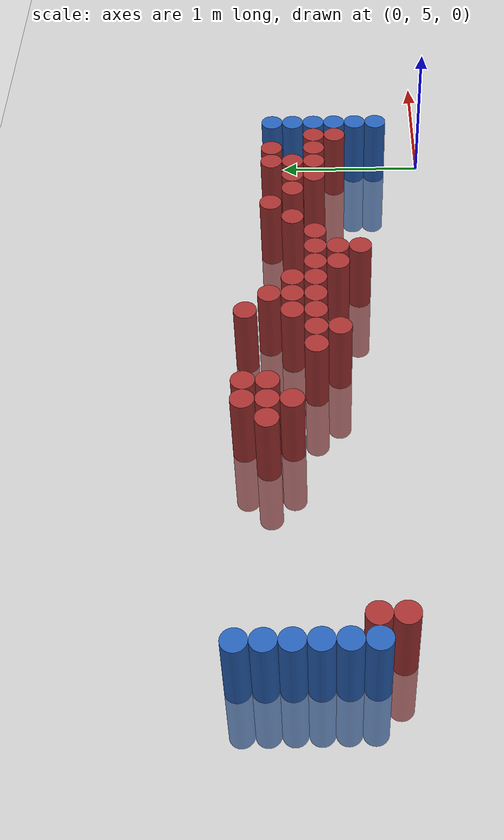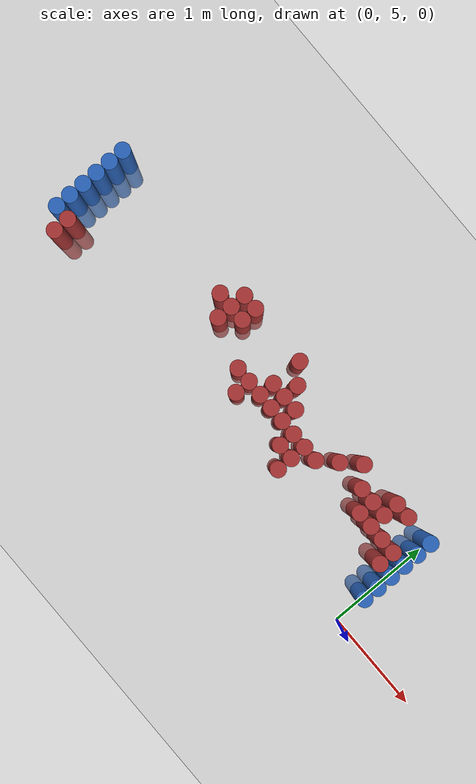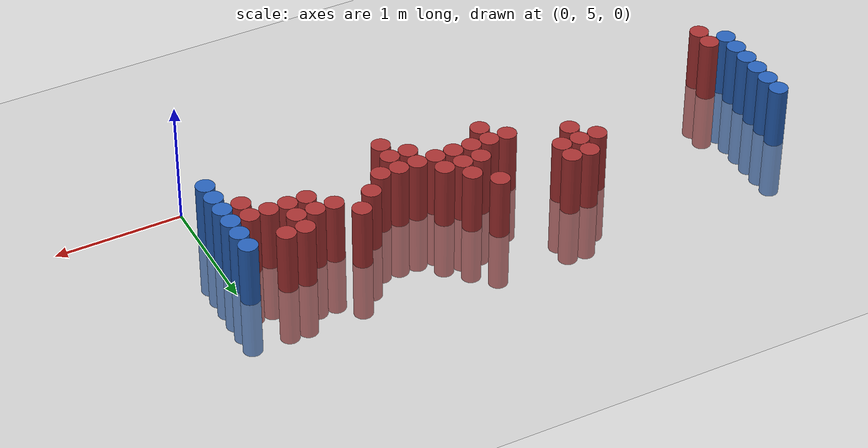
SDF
<sdf version="1.6">
 <world name="default">
  <model name="ground_plane">
   <static>1</static>
   <link name="link">
    <collision name="collision">
     <geometry><plane><normal>0 0 1</normal><size>100 100</size></plane></geometry>
     <surface><friction><ode><mu>100</mu><mu2>50</mu2></ode></friction></surface>
    </collision>
    <visual name="visual">
     <cast_shadows>0</cast_shadows>
     <geometry><plane><normal>0 0 1</normal><size>100 100</size></plane></geometry>
     <material>
      <script><uri>file://media/materials/scripts/gazebo.material</uri><name>Gazebo/Grey</name></script>
     </material>
    </visual>
   </link>
  </model>
  <model name="unit_cylinder_98">
   <static>1</static>
   <pose>-4.425000 5.475000 0.000000 0.000000 0.000000 0.000000</pose>
   <link name="link">
    <inertial>
     <mass>1</mass>
     <inertia><ixx>0.145833</ixx><ixy>0</ixy><ixz>0</ixz><iyy>0.145833</iyy><iyz>0</iyz><izz>0.125</izz></inertia>
    </inertial>
    <collision name="collision">
     <geometry><cylinder><radius>0.075000</radius><length>1</length></cylinder></geometry>
    </collision>
    <visual name="visual">
     <geometry><cylinder><radius>0.075000</radius><length>1</length></cylinder></geometry>
     <material>
      <ambient>0.152000 0.379000 0.720000 1</ambient>
      <diffuse>0.152000 0.379000 0.720000 1</diffuse>
     </material>
     <material>
      <script><name>Gazebo/Grey</name><uri>file://media/materials/scripts/gazebo.material</uri></script>
     </material>
    </visual>
   </link>
  </model>
  <model name="unit_cylinder_99">
   <static>1</static>
   <pose>-4.425000 5.625000 0.000000 0.000000 0.000000 0.000000</pose>
   <link name="link">
    <inertial>
     <mass>1</mass>
     <inertia><ixx>0.145833</ixx><ixy>0</ixy><ixz>0</ixz><iyy>0.145833</iyy><iyz>0</iyz><izz>0.125</izz></inertia>
    </inertial>
    <collision name="collision">
     <geometry><cylinder><radius>0.075000</radius><length>1</length></cylinder></geometry>
    </collision>
    <visual name="visual">
     <geometry><cylinder><radius>0.075000</radius><length>1</length></cylinder></geometry>
     <material>
      <ambient>0.152000 0.379000 0.720000 1</ambient>
      <diffuse>0.152000 0.379000 0.720000 1</diffuse>
     </material>
     <material>
      <script><name>Gazebo/Grey</name><uri>file://media/materials/scripts/gazebo.material</uri></script>
     </material>
    </visual>
   </link>
  </model>
  <model name="unit_cylinder_100">
   <static>1</static>
   <pose>-4.425000 5.775000 0.000000 0.000000 0.000000 0.000000</pose>
   <link name="link">
    <inertial>
     <mass>1</mass>
     <inertia><ixx>0.145833</ixx><ixy>0</ixy><ixz>0</ixz><iyy>0.145833</iyy><iyz>0</iyz><izz>0.125</izz></inertia>
    </inertial>
    <collision name="collision">
     <geometry><cylinder><radius>0.075000</radius><length>1</length></cylinder></geometry>
    </collision>
    <visual name="visual">
     <geometry><cylinder><radius>0.075000</radius><length>1</length></cylinder></geometry>
     <material>
      <ambient>0.152000 0.379000 0.720000 1</ambient>
      <diffuse>0.152000 0.379000 0.720000 1</diffuse>
     </material>
     <material>
      <script><name>Gazebo/Grey</name><uri>file://media/materials/scripts/gazebo.material</uri></script>
     </material>
    </visual>
   </link>
  </model>
  <model name="unit_cylinder_101">
   <static>1</static>
   <pose>-4.425000 5.925000 0.000000 0.000000 0.000000 0.000000</pose>
   <link name="link">
    <inertial>
     <mass>1</mass>
     <inertia><ixx>0.145833</ixx><ixy>0</ixy><ixz>0</ixz><iyy>0.145833</iyy><iyz>0</iyz><izz>0.125</izz></inertia>
    </inertial>
    <collision name="collision">
     <geometry><cylinder><radius>0.075000</radius><length>1</length></cylinder></geometry>
    </collision>
    <visual name="visual">
     <geometry><cylinder><radius>0.075000</radius><length>1</length></cylinder></geometry>
     <material>
      <ambient>0.152000 0.379000 0.720000 1</ambient>
      <diffuse>0.152000 0.379000 0.720000 1</diffuse>
     </material>
     <material>
      <script><name>Gazebo/Grey</name><uri>file://media/materials/scripts/gazebo.material</uri></script>
     </material>
    </visual>
   </link>
  </model>
  <model name="unit_cylinder_102">
   <static>1</static>
   <pose>-4.425000 6.075000 0.000000 0.000000 0.000000 0.000000</pose>
   <link name="link">
    <inertial>
     <mass>1</mass>
     <inertia><ixx>0.145833</ixx><ixy>0</ixy><ixz>0</ixz><iyy>0.145833</iyy><iyz>0</iyz><izz>0.125</izz></inertia>
    </inertial>
    <collision name="collision">
     <geometry><cylinder><radius>0.075000</radius><length>1</length></cylinder></geometry>
    </collision>
    <visual name="visual">
     <geometry><cylinder><radius>0.075000</radius><length>1</length></cylinder></geometry>
     <material>
      <ambient>0.152000 0.379000 0.720000 1</ambient>
      <diffuse>0.152000 0.379000 0.720000 1</diffuse>
     </material>
     <material>
      <script><name>Gazebo/Grey</name><uri>file://media/materials/scripts/gazebo.material</uri></script>
     </material>
    </visual>
   </link>
  </model>
  <model name="unit_cylinder_103">
   <static>1</static>
   <pose>-4.425000 6.225000 0.000000 0.000000 0.000000 0.000000</pose>
   <link name="link">
    <inertial>
     <mass>1</mass>
     <inertia><ixx>0.145833</ixx><ixy>0</ixy><ixz>0</ixz><iyy>0.145833</iyy><iyz>0</iyz><izz>0.125</izz></inertia>
    </inertial>
    <collision name="collision">
     <geometry><cylinder><radius>0.075000</radius><length>1</length></cylinder></geometry>
    </collision>
    <visual name="visual">
     <geometry><cylinder><radius>0.075000</radius><length>1</length></cylinder></geometry>
     <material>
      <ambient>0.152000 0.379000 0.720000 1</ambient>
      <diffuse>0.152000 0.379000 0.720000 1</diffuse>
     </material>
     <material>
      <script><name>Gazebo/Grey</name><uri>file://media/materials/scripts/gazebo.material</uri></script>
     </material>
    </visual>
   </link>
  </model>
  <model name="unit_cylinder_126">
   <static>1</static>
   <pose>-4.275000 5.325000 0.000000 0.000000 0.000000 0.000000</pose>
   <link name="link">
    <inertial>
     <mass>1</mass>
     <inertia><ixx>0.145833</ixx><ixy>0</ixy><ixz>0</ixz><iyy>0.145833</iyy><iyz>0</iyz><izz>0.125</izz></inertia>
    </inertial>
    <collision name="collision">
     <geometry><cylinder><radius>0.075000</radius><length>1</length></cylinder></geometry>
    </collision>
    <visual name="visual">
     <geometry><cylinder><radius>0.075000</radius><length>1</length></cylinder></geometry>
     <material>
      <ambient>0.648000 0.192000 0.192000 1</ambient>
      <diffuse>0.648000 0.192000 0.192000 1</diffuse>
     </material>
     <material>
      <script><name>Gazebo/Grey</name><uri>file://media/materials/scripts/gazebo.material</uri></script>
     </material>
    </visual>
   </link>
  </model>
  <model name="unit_cylinder_127">
   <static>1</static>
   <pose>-4.275000 5.475000 0.000000 0.000000 0.000000 0.000000</pose>
   <link name="link">
    <inertial>
     <mass>1</mass>
     <inertia><ixx>0.145833</ixx><ixy>0</ixy><ixz>0</ixz><iyy>0.145833</iyy><iyz>0</iyz><izz>0.125</izz></inertia>
    </inertial>
    <collision name="collision">
     <geometry><cylinder><radius>0.075000</radius><length>1</length></cylinder></geometry>
    </collision>
    <visual name="visual">
     <geometry><cylinder><radius>0.075000</radius><length>1</length></cylinder></geometry>
     <material>
      <ambient>0.648000 0.192000 0.192000 1</ambient>
      <diffuse>0.648000 0.192000 0.192000 1</diffuse>
     </material>
     <material>
      <script><name>Gazebo/Grey</name><uri>file://media/materials/scripts/gazebo.material</uri></script>
     </material>
    </visual>
   </link>
  </model>
  <model name="unit_cylinder_168">
   <static>1</static>
   <pose>-2.925000 6.075000 0.000000 0.000000 0.000000 0.000000</pose>
   <link name="link">
    <inertial>
     <mass>1</mass>
     <inertia><ixx>0.145833</ixx><ixy>0</ixy><ixz>0</ixz><iyy>0.145833</iyy><iyz>0</iyz><izz>0.125</izz></inertia>
    </inertial>
    <collision name="collision">
     <geometry><cylinder><radius>0.075000</radius><length>1</length></cylinder></geometry>
    </collision>
    <visual name="visual">
     <geometry><cylinder><radius>0.075000</radius><length>1</length></cylinder></geometry>
     <material>
      <ambient>0.648000 0.192000 0.192000 1</ambient>
      <diffuse>0.648000 0.192000 0.192000 1</diffuse>
     </material>
     <material>
      <script><name>Gazebo/Grey</name><uri>file://media/materials/scripts/gazebo.material</uri></script>
     </material>
    </visual>
   </link>
  </model>
  <model name="unit_cylinder_172">
   <static>1</static>
   <pose>-2.775000 5.925000 0.000000 0.000000 0.000000 0.000000</pose>
   <link name="link">
    <inertial>
     <mass>1</mass>
     <inertia><ixx>0.145833</ixx><ixy>0</ixy><ixz>0</ixz><iyy>0.145833</iyy><iyz>0</iyz><izz>0.125</izz></inertia>
    </inertial>
    <collision name="collision">
     <geometry><cylinder><radius>0.075000</radius><length>1</length></cylinder></geometry>
    </collision>
    <visual name="visual">
     <geometry><cylinder><radius>0.075000</radius><length>1</length></cylinder></geometry>
     <material>
      <ambient>0.648000 0.192000 0.192000 1</ambient>
      <diffuse>0.648000 0.192000 0.192000 1</diffuse>
     </material>
     <material>
      <script><name>Gazebo/Grey</name><uri>file://media/materials/scripts/gazebo.material</uri></script>
     </material>
    </visual>
   </link>
  </model>
  <model name="unit_cylinder_173">
   <static>1</static>
   <pose>-2.775000 6.075000 0.000000 0.000000 0.000000 0.000000</pose>
   <link name="link">
    <inertial>
     <mass>1</mass>
     <inertia><ixx>0.145833</ixx><ixy>0</ixy><ixz>0</ixz><iyy>0.145833</iyy><iyz>0</iyz><izz>0.125</izz></inertia>
    </inertial>
    <collision name="collision">
     <geometry><cylinder><radius>0.075000</radius><length>1</length></cylinder></geometry>
    </collision>
    <visual name="visual">
     <geometry><cylinder><radius>0.075000</radius><length>1</length></cylinder></geometry>
     <material>
      <ambient>0.648000 0.192000 0.192000 1</ambient>
      <diffuse>0.648000 0.192000 0.192000 1</diffuse>
     </material>
     <material>
      <script><name>Gazebo/Grey</name><uri>file://media/materials/scripts/gazebo.material</uri></script>
     </material>
    </visual>
   </link>
  </model>
  <model name="unit_cylinder_174">
   <static>1</static>
   <pose>-2.775000 6.225000 0.000000 0.000000 0.000000 0.000000</pose>
   <link name="link">
    <inertial>
     <mass>1</mass>
     <inertia><ixx>0.145833</ixx><ixy>0</ixy><ixz>0</ixz><iyy>0.145833</iyy><iyz>0</iyz><izz>0.125</izz></inertia>
    </inertial>
    <collision name="collision">
     <geometry><cylinder><radius>0.075000</radius><length>1</length></cylinder></geometry>
    </collision>
    <visual name="visual">
     <geometry><cylinder><radius>0.075000</radius><length>1</length></cylinder></geometry>
     <material>
      <ambient>0.648000 0.192000 0.192000 1</ambient>
      <diffuse>0.648000 0.192000 0.192000 1</diffuse>
     </material>
     <material>
      <script><name>Gazebo/Grey</name><uri>file://media/materials/scripts/gazebo.material</uri></script>
     </material>
    </visual>
   </link>
  </model>
  <model name="unit_cylinder_177">
   <static>1</static>
   <pose>-2.625000 6.075000 0.000000 0.000000 0.000000 0.000000</pose>
   <link name="link">
    <inertial>
     <mass>1</mass>
     <inertia><ixx>0.145833</ixx><ixy>0</ixy><ixz>0</ixz><iyy>0.145833</iyy><iyz>0</iyz><izz>0.125</izz></inertia>
    </inertial>
    <collision name="collision">
     <geometry><cylinder><radius>0.075000</radius><length>1</length></cylinder></geometry>
    </collision>
    <visual name="visual">
     <geometry><cylinder><radius>0.075000</radius><length>1</length></cylinder></geometry>
     <material>
      <ambient>0.648000 0.192000 0.192000 1</ambient>
      <diffuse>0.648000 0.192000 0.192000 1</diffuse>
     </material>
     <material>
      <script><name>Gazebo/Grey</name><uri>file://media/materials/scripts/gazebo.material</uri></script>
     </material>
    </visual>
   </link>
  </model>
  <model name="unit_cylinder_178">
   <static>1</static>
   <pose>-2.625000 6.225000 0.000000 0.000000 0.000000 0.000000</pose>
   <link name="link">
    <inertial>
     <mass>1</mass>
     <inertia><ixx>0.145833</ixx><ixy>0</ixy><ixz>0</ixz><iyy>0.145833</iyy><iyz>0</iyz><izz>0.125</izz></inertia>
    </inertial>
    <collision name="collision">
     <geometry><cylinder><radius>0.075000</radius><length>1</length></cylinder></geometry>
    </collision>
    <visual name="visual">
     <geometry><cylinder><radius>0.075000</radius><length>1</length></cylinder></geometry>
     <material>
      <ambient>0.648000 0.192000 0.192000 1</ambient>
      <diffuse>0.648000 0.192000 0.192000 1</diffuse>
     </material>
     <material>
      <script><name>Gazebo/Grey</name><uri>file://media/materials/scripts/gazebo.material</uri></script>
     </material>
    </visual>
   </link>
  </model>
  <model name="unit_cylinder_181">
   <static>1</static>
   <pose>-2.325000 5.775000 0.000000 0.000000 0.000000 0.000000</pose>
   <link name="link">
    <inertial>
     <mass>1</mass>
     <inertia><ixx>0.145833</ixx><ixy>0</ixy><ixz>0</ixz><iyy>0.145833</iyy><iyz>0</iyz><izz>0.125</izz></inertia>
    </inertial>
    <collision name="collision">
     <geometry><cylinder><radius>0.075000</radius><length>1</length></cylinder></geometry>
    </collision>
    <visual name="visual">
     <geometry><cylinder><radius>0.075000</radius><length>1</length></cylinder></geometry>
     <material>
      <ambient>0.648000 0.192000 0.192000 1</ambient>
      <diffuse>0.648000 0.192000 0.192000 1</diffuse>
     </material>
     <material>
      <script><name>Gazebo/Grey</name><uri>file://media/materials/scripts/gazebo.material</uri></script>
     </material>
    </visual>
   </link>
  </model>
  <model name="unit_cylinder_183">
   <static>1</static>
   <pose>-2.175000 5.625000 0.000000 0.000000 0.000000 0.000000</pose>
   <link name="link">
    <inertial>
     <mass>1</mass>
     <inertia><ixx>0.145833</ixx><ixy>0</ixy><ixz>0</ixz><iyy>0.145833</iyy><iyz>0</iyz><izz>0.125</izz></inertia>
    </inertial>
    <collision name="collision">
     <geometry><cylinder><radius>0.075000</radius><length>1</length></cylinder></geometry>
    </collision>
    <visual name="visual">
     <geometry><cylinder><radius>0.075000</radius><length>1</length></cylinder></geometry>
     <material>
      <ambient>0.648000 0.192000 0.192000 1</ambient>
      <diffuse>0.648000 0.192000 0.192000 1</diffuse>
     </material>
     <material>
      <script><name>Gazebo/Grey</name><uri>file://media/materials/scripts/gazebo.material</uri></script>
     </material>
    </visual>
   </link>
  </model>
  <model name="unit_cylinder_184">
   <static>1</static>
   <pose>-2.175000 5.775000 0.000000 0.000000 0.000000 0.000000</pose>
   <link name="link">
    <inertial>
     <mass>1</mass>
     <inertia><ixx>0.145833</ixx><ixy>0</ixy><ixz>0</ixz><iyy>0.145833</iyy><iyz>0</iyz><izz>0.125</izz></inertia>
    </inertial>
    <collision name="collision">
     <geometry><cylinder><radius>0.075000</radius><length>1</length></cylinder></geometry>
    </collision>
    <visual name="visual">
     <geometry><cylinder><radius>0.075000</radius><length>1</length></cylinder></geometry>
     <material>
      <ambient>0.648000 0.192000 0.192000 1</ambient>
      <diffuse>0.648000 0.192000 0.192000 1</diffuse>
     </material>
     <material>
      <script><name>Gazebo/Grey</name><uri>file://media/materials/scripts/gazebo.material</uri></script>
     </material>
    </visual>
   </link>
  </model>
  <model name="unit_cylinder_188">
   <static>1</static>
   <pose>-2.025000 5.775000 0.000000 0.000000 0.000000 0.000000</pose>
   <link name="link">
    <inertial>
     <mass>1</mass>
     <inertia><ixx>0.145833</ixx><ixy>0</ixy><ixz>0</ixz><iyy>0.145833</iyy><iyz>0</iyz><izz>0.125</izz></inertia>
    </inertial>
    <collision name="collision">
     <geometry><cylinder><radius>0.075000</radius><length>1</length></cylinder></geometry>
    </collision>
    <visual name="visual">
     <geometry><cylinder><radius>0.075000</radius><length>1</length></cylinder></geometry>
     <material>
      <ambient>0.648000 0.192000 0.192000 1</ambient>
      <diffuse>0.648000 0.192000 0.192000 1</diffuse>
     </material>
     <material>
      <script><name>Gazebo/Grey</name><uri>file://media/materials/scripts/gazebo.material</uri></script>
     </material>
    </visual>
   </link>
  </model>
  <model name="unit_cylinder_189">
   <static>1</static>
   <pose>-2.025000 5.925000 0.000000 0.000000 0.000000 0.000000</pose>
   <link name="link">
    <inertial>
     <mass>1</mass>
     <inertia><ixx>0.145833</ixx><ixy>0</ixy><ixz>0</ixz><iyy>0.145833</iyy><iyz>0</iyz><izz>0.125</izz></inertia>
    </inertial>
    <collision name="collision">
     <geometry><cylinder><radius>0.075000</radius><length>1</length></cylinder></geometry>
    </collision>
    <visual name="visual">
     <geometry><cylinder><radius>0.075000</radius><length>1</length></cylinder></geometry>
     <material>
      <ambient>0.648000 0.192000 0.192000 1</ambient>
      <diffuse>0.648000 0.192000 0.192000 1</diffuse>
     </material>
     <material>
      <script><name>Gazebo/Grey</name><uri>file://media/materials/scripts/gazebo.material</uri></script>
     </material>
    </visual>
   </link>
  </model>
  <model name="unit_cylinder_190">
   <static>1</static>
   <pose>-2.025000 6.225000 0.000000 0.000000 0.000000 0.000000</pose>
   <link name="link">
    <inertial>
     <mass>1</mass>
     <inertia><ixx>0.145833</ixx><ixy>0</ixy><ixz>0</ixz><iyy>0.145833</iyy><iyz>0</iyz><izz>0.125</izz></inertia>
    </inertial>
    <collision name="collision">
     <geometry><cylinder><radius>0.075000</radius><length>1</length></cylinder></geometry>
    </collision>
    <visual name="visual">
     <geometry><cylinder><radius>0.075000</radius><length>1</length></cylinder></geometry>
     <material>
      <ambient>0.648000 0.192000 0.192000 1</ambient>
      <diffuse>0.648000 0.192000 0.192000 1</diffuse>
     </material>
     <material>
      <script><name>Gazebo/Grey</name><uri>file://media/materials/scripts/gazebo.material</uri></script>
     </material>
    </visual>
   </link>
  </model>
  <model name="unit_cylinder_196">
   <static>1</static>
   <pose>-1.875000 5.775000 0.000000 0.000000 0.000000 0.000000</pose>
   <link name="link">
    <inertial>
     <mass>1</mass>
     <inertia><ixx>0.145833</ixx><ixy>0</ixy><ixz>0</ixz><iyy>0.145833</iyy><iyz>0</iyz><izz>0.125</izz></inertia>
    </inertial>
    <collision name="collision">
     <geometry><cylinder><radius>0.075000</radius><length>1</length></cylinder></geometry>
    </collision>
    <visual name="visual">
     <geometry><cylinder><radius>0.075000</radius><length>1</length></cylinder></geometry>
     <material>
      <ambient>0.648000 0.192000 0.192000 1</ambient>
      <diffuse>0.648000 0.192000 0.192000 1</diffuse>
     </material>
     <material>
      <script><name>Gazebo/Grey</name><uri>file://media/materials/scripts/gazebo.material</uri></script>
     </material>
    </visual>
   </link>
  </model>
  <model name="unit_cylinder_197">
   <static>1</static>
   <pose>-1.875000 5.925000 0.000000 0.000000 0.000000 0.000000</pose>
   <link name="link">
    <inertial>
     <mass>1</mass>
     <inertia><ixx>0.145833</ixx><ixy>0</ixy><ixz>0</ixz><iyy>0.145833</iyy><iyz>0</iyz><izz>0.125</izz></inertia>
    </inertial>
    <collision name="collision">
     <geometry><cylinder><radius>0.075000</radius><length>1</length></cylinder></geometry>
    </collision>
    <visual name="visual">
     <geometry><cylinder><radius>0.075000</radius><length>1</length></cylinder></geometry>
     <material>
      <ambient>0.648000 0.192000 0.192000 1</ambient>
      <diffuse>0.648000 0.192000 0.192000 1</diffuse>
     </material>
     <material>
      <script><name>Gazebo/Grey</name><uri>file://media/materials/scripts/gazebo.material</uri></script>
     </material>
    </visual>
   </link>
  </model>
  <model name="unit_cylinder_198">
   <static>1</static>
   <pose>-1.875000 6.075000 0.000000 0.000000 0.000000 0.000000</pose>
   <link name="link">
    <inertial>
     <mass>1</mass>
     <inertia><ixx>0.145833</ixx><ixy>0</ixy><ixz>0</ixz><iyy>0.145833</iyy><iyz>0</iyz><izz>0.125</izz></inertia>
    </inertial>
    <collision name="collision">
     <geometry><cylinder><radius>0.075000</radius><length>1</length></cylinder></geometry>
    </collision>
    <visual name="visual">
     <geometry><cylinder><radius>0.075000</radius><length>1</length></cylinder></geometry>
     <material>
      <ambient>0.648000 0.192000 0.192000 1</ambient>
      <diffuse>0.648000 0.192000 0.192000 1</diffuse>
     </material>
     <material>
      <script><name>Gazebo/Grey</name><uri>file://media/materials/scripts/gazebo.material</uri></script>
     </material>
    </visual>
   </link>
  </model>
  <model name="unit_cylinder_202">
   <static>1</static>
   <pose>-1.725000 5.775000 0.000000 0.000000 0.000000 0.000000</pose>
   <link name="link">
    <inertial>
     <mass>1</mass>
     <inertia><ixx>0.145833</ixx><ixy>0</ixy><ixz>0</ixz><iyy>0.145833</iyy><iyz>0</iyz><izz>0.125</izz></inertia>
    </inertial>
    <collision name="collision">
     <geometry><cylinder><radius>0.075000</radius><length>1</length></cylinder></geometry>
    </collision>
    <visual name="visual">
     <geometry><cylinder><radius>0.075000</radius><length>1</length></cylinder></geometry>
     <material>
      <ambient>0.648000 0.192000 0.192000 1</ambient>
      <diffuse>0.648000 0.192000 0.192000 1</diffuse>
     </material>
     <material>
      <script><name>Gazebo/Grey</name><uri>file://media/materials/scripts/gazebo.material</uri></script>
     </material>
    </visual>
   </link>
  </model>
  <model name="unit_cylinder_203">
   <static>1</static>
   <pose>-1.725000 5.925000 0.000000 0.000000 0.000000 0.000000</pose>
   <link name="link">
    <inertial>
     <mass>1</mass>
     <inertia><ixx>0.145833</ixx><ixy>0</ixy><ixz>0</ixz><iyy>0.145833</iyy><iyz>0</iyz><izz>0.125</izz></inertia>
    </inertial>
    <collision name="collision">
     <geometry><cylinder><radius>0.075000</radius><length>1</length></cylinder></geometry>
    </collision>
    <visual name="visual">
     <geometry><cylinder><radius>0.075000</radius><length>1</length></cylinder></geometry>
     <material>
      <ambient>0.648000 0.192000 0.192000 1</ambient>
      <diffuse>0.648000 0.192000 0.192000 1</diffuse>
     </material>
     <material>
      <script><name>Gazebo/Grey</name><uri>file://media/materials/scripts/gazebo.material</uri></script>
     </material>
    </visual>
   </link>
  </model>
  <model name="unit_cylinder_205">
   <static>1</static>
   <pose>-1.575000 5.625000 0.000000 0.000000 0.000000 0.000000</pose>
   <link name="link">
    <inertial>
     <mass>1</mass>
     <inertia><ixx>0.145833</ixx><ixy>0</ixy><ixz>0</ixz><iyy>0.145833</iyy><iyz>0</iyz><izz>0.125</izz></inertia>
    </inertial>
    <collision name="collision">
     <geometry><cylinder><radius>0.075000</radius><length>1</length></cylinder></geometry>
    </collision>
    <visual name="visual">
     <geometry><cylinder><radius>0.075000</radius><length>1</length></cylinder></geometry>
     <material>
      <ambient>0.648000 0.192000 0.192000 1</ambient>
      <diffuse>0.648000 0.192000 0.192000 1</diffuse>
     </material>
     <material>
      <script><name>Gazebo/Grey</name><uri>file://media/materials/scripts/gazebo.material</uri></script>
     </material>
    </visual>
   </link>
  </model>
  <model name="unit_cylinder_206">
   <static>1</static>
   <pose>-1.575000 5.775000 0.000000 0.000000 0.000000 0.000000</pose>
   <link name="link">
    <inertial>
     <mass>1</mass>
     <inertia><ixx>0.145833</ixx><ixy>0</ixy><ixz>0</ixz><iyy>0.145833</iyy><iyz>0</iyz><izz>0.125</izz></inertia>
    </inertial>
    <collision name="collision">
     <geometry><cylinder><radius>0.075000</radius><length>1</length></cylinder></geometry>
    </collision>
    <visual name="visual">
     <geometry><cylinder><radius>0.075000</radius><length>1</length></cylinder></geometry>
     <material>
      <ambient>0.648000 0.192000 0.192000 1</ambient>
      <diffuse>0.648000 0.192000 0.192000 1</diffuse>
     </material>
     <material>
      <script><name>Gazebo/Grey</name><uri>file://media/materials/scripts/gazebo.material</uri></script>
     </material>
    </visual>
   </link>
  </model>
  <model name="unit_cylinder_209">
   <static>1</static>
   <pose>-1.425000 5.475000 0.000000 0.000000 0.000000 0.000000</pose>
   <link name="link">
    <inertial>
     <mass>1</mass>
     <inertia><ixx>0.145833</ixx><ixy>0</ixy><ixz>0</ixz><iyy>0.145833</iyy><iyz>0</iyz><izz>0.125</izz></inertia>
    </inertial>
    <collision name="collision">
     <geometry><cylinder><radius>0.075000</radius><length>1</length></cylinder></geometry>
    </collision>
    <visual name="visual">
     <geometry><cylinder><radius>0.075000</radius><length>1</length></cylinder></geometry>
     <material>
      <ambient>0.648000 0.192000 0.192000 1</ambient>
      <diffuse>0.648000 0.192000 0.192000 1</diffuse>
     </material>
     <material>
      <script><name>Gazebo/Grey</name><uri>file://media/materials/scripts/gazebo.material</uri></script>
     </material>
    </visual>
   </link>
  </model>
  <model name="unit_cylinder_210">
   <static>1</static>
   <pose>-1.425000 5.625000 0.000000 0.000000 0.000000 0.000000</pose>
   <link name="link">
    <inertial>
     <mass>1</mass>
     <inertia><ixx>0.145833</ixx><ixy>0</ixy><ixz>0</ixz><iyy>0.145833</iyy><iyz>0</iyz><izz>0.125</izz></inertia>
    </inertial>
    <collision name="collision">
     <geometry><cylinder><radius>0.075000</radius><length>1</length></cylinder></geometry>
    </collision>
    <visual name="visual">
     <geometry><cylinder><radius>0.075000</radius><length>1</length></cylinder></geometry>
     <material>
      <ambient>0.648000 0.192000 0.192000 1</ambient>
      <diffuse>0.648000 0.192000 0.192000 1</diffuse>
     </material>
     <material>
      <script><name>Gazebo/Grey</name><uri>file://media/materials/scripts/gazebo.material</uri></script>
     </material>
    </visual>
   </link>
  </model>
  <model name="unit_cylinder_211">
   <static>1</static>
   <pose>-1.425000 5.775000 0.000000 0.000000 0.000000 0.000000</pose>
   <link name="link">
    <inertial>
     <mass>1</mass>
     <inertia><ixx>0.145833</ixx><ixy>0</ixy><ixz>0</ixz><iyy>0.145833</iyy><iyz>0</iyz><izz>0.125</izz></inertia>
    </inertial>
    <collision name="collision">
     <geometry><cylinder><radius>0.075000</radius><length>1</length></cylinder></geometry>
    </collision>
    <visual name="visual">
     <geometry><cylinder><radius>0.075000</radius><length>1</length></cylinder></geometry>
     <material>
      <ambient>0.648000 0.192000 0.192000 1</ambient>
      <diffuse>0.648000 0.192000 0.192000 1</diffuse>
     </material>
     <material>
      <script><name>Gazebo/Grey</name><uri>file://media/materials/scripts/gazebo.material</uri></script>
     </material>
    </visual>
   </link>
  </model>
  <model name="unit_cylinder_213">
   <static>1</static>
   <pose>-1.275000 5.775000 0.000000 0.000000 0.000000 0.000000</pose>
   <link name="link">
    <inertial>
     <mass>1</mass>
     <inertia><ixx>0.145833</ixx><ixy>0</ixy><ixz>0</ixz><iyy>0.145833</iyy><iyz>0</iyz><izz>0.125</izz></inertia>
    </inertial>
    <collision name="collision">
     <geometry><cylinder><radius>0.075000</radius><length>1</length></cylinder></geometry>
    </collision>
    <visual name="visual">
     <geometry><cylinder><radius>0.075000</radius><length>1</length></cylinder></geometry>
     <material>
      <ambient>0.648000 0.192000 0.192000 1</ambient>
      <diffuse>0.648000 0.192000 0.192000 1</diffuse>
     </material>
     <material>
      <script><name>Gazebo/Grey</name><uri>file://media/materials/scripts/gazebo.material</uri></script>
     </material>
    </visual>
   </link>
  </model>
  <model name="unit_cylinder_214">
   <static>1</static>
   <pose>-1.125000 5.925000 0.000000 0.000000 0.000000 0.000000</pose>
   <link name="link">
    <inertial>
     <mass>1</mass>
     <inertia><ixx>0.145833</ixx><ixy>0</ixy><ixz>0</ixz><iyy>0.145833</iyy><iyz>0</iyz><izz>0.125</izz></inertia>
    </inertial>
    <collision name="collision">
     <geometry><cylinder><radius>0.075000</radius><length>1</length></cylinder></geometry>
    </collision>
    <visual name="visual">
     <geometry><cylinder><radius>0.075000</radius><length>1</length></cylinder></geometry>
     <material>
      <ambient>0.648000 0.192000 0.192000 1</ambient>
      <diffuse>0.648000 0.192000 0.192000 1</diffuse>
     </material>
     <material>
      <script><name>Gazebo/Grey</name><uri>file://media/materials/scripts/gazebo.material</uri></script>
     </material>
    </visual>
   </link>
  </model>
  <model name="unit_cylinder_218">
   <static>1</static>
   <pose>-0.975000 6.075000 0.000000 0.000000 0.000000 0.000000</pose>
   <link name="link">
    <inertial>
     <mass>1</mass>
     <inertia><ixx>0.145833</ixx><ixy>0</ixy><ixz>0</ixz><iyy>0.145833</iyy><iyz>0</iyz><izz>0.125</izz></inertia>
    </inertial>
    <collision name="collision">
     <geometry><cylinder><radius>0.075000</radius><length>1</length></cylinder></geometry>
    </collision>
    <visual name="visual">
     <geometry><cylinder><radius>0.075000</radius><length>1</length></cylinder></geometry>
     <material>
      <ambient>0.648000 0.192000 0.192000 1</ambient>
      <diffuse>0.648000 0.192000 0.192000 1</diffuse>
     </material>
     <material>
      <script><name>Gazebo/Grey</name><uri>file://media/materials/scripts/gazebo.material</uri></script>
     </material>
    </visual>
   </link>
  </model>
  <model name="unit_cylinder_224">
   <static>1</static>
   <pose>-0.825000 5.925000 0.000000 0.000000 0.000000 0.000000</pose>
   <link name="link">
    <inertial>
     <mass>1</mass>
     <inertia><ixx>0.145833</ixx><ixy>0</ixy><ixz>0</ixz><iyy>0.145833</iyy><iyz>0</iyz><izz>0.125</izz></inertia>
    </inertial>
    <collision name="collision">
     <geometry><cylinder><radius>0.075000</radius><length>1</length></cylinder></geometry>
    </collision>
    <visual name="visual">
     <geometry><cylinder><radius>0.075000</radius><length>1</length></cylinder></geometry>
     <material>
      <ambient>0.648000 0.192000 0.192000 1</ambient>
      <diffuse>0.648000 0.192000 0.192000 1</diffuse>
     </material>
     <material>
      <script><name>Gazebo/Grey</name><uri>file://media/materials/scripts/gazebo.material</uri></script>
     </material>
    </visual>
   </link>
  </model>
  <model name="unit_cylinder_227">
   <static>1</static>
   <pose>-0.675000 5.775000 0.000000 0.000000 0.000000 0.000000</pose>
   <link name="link">
    <inertial>
     <mass>1</mass>
     <inertia><ixx>0.145833</ixx><ixy>0</ixy><ixz>0</ixz><iyy>0.145833</iyy><iyz>0</iyz><izz>0.125</izz></inertia>
    </inertial>
    <collision name="collision">
     <geometry><cylinder><radius>0.075000</radius><length>1</length></cylinder></geometry>
    </collision>
    <visual name="visual">
     <geometry><cylinder><radius>0.075000</radius><length>1</length></cylinder></geometry>
     <material>
      <ambient>0.648000 0.192000 0.192000 1</ambient>
      <diffuse>0.648000 0.192000 0.192000 1</diffuse>
     </material>
     <material>
      <script><name>Gazebo/Grey</name><uri>file://media/materials/scripts/gazebo.material</uri></script>
     </material>
    </visual>
   </link>
  </model>
  <model name="unit_cylinder_228">
   <static>1</static>
   <pose>-0.675000 5.925000 0.000000 0.000000 0.000000 0.000000</pose>
   <link name="link">
    <inertial>
     <mass>1</mass>
     <inertia><ixx>0.145833</ixx><ixy>0</ixy><ixz>0</ixz><iyy>0.145833</iyy><iyz>0</iyz><izz>0.125</izz></inertia>
    </inertial>
    <collision name="collision">
     <geometry><cylinder><radius>0.075000</radius><length>1</length></cylinder></geometry>
    </collision>
    <visual name="visual">
     <geometry><cylinder><radius>0.075000</radius><length>1</length></cylinder></geometry>
     <material>
      <ambient>0.648000 0.192000 0.192000 1</ambient>
      <diffuse>0.648000 0.192000 0.192000 1</diffuse>
     </material>
     <material>
      <script><name>Gazebo/Grey</name><uri>file://media/materials/scripts/gazebo.material</uri></script>
     </material>
    </visual>
   </link>
  </model>
  <model name="unit_cylinder_231">
   <static>1</static>
   <pose>-0.525000 5.775000 0.000000 0.000000 0.000000 0.000000</pose>
   <link name="link">
    <inertial>
     <mass>1</mass>
     <inertia><ixx>0.145833</ixx><ixy>0</ixy><ixz>0</ixz><iyy>0.145833</iyy><iyz>0</iyz><izz>0.125</izz></inertia>
    </inertial>
    <collision name="collision">
     <geometry><cylinder><radius>0.075000</radius><length>1</length></cylinder></geometry>
    </collision>
    <visual name="visual">
     <geometry><cylinder><radius>0.075000</radius><length>1</length></cylinder></geometry>
     <material>
      <ambient>0.648000 0.192000 0.192000 1</ambient>
      <diffuse>0.648000 0.192000 0.192000 1</diffuse>
     </material>
     <material>
      <script><name>Gazebo/Grey</name><uri>file://media/materials/scripts/gazebo.material</uri></script>
     </material>
    </visual>
   </link>
  </model>
  <model name="unit_cylinder_232">
   <static>1</static>
   <pose>-0.525000 5.925000 0.000000 0.000000 0.000000 0.000000</pose>
   <link name="link">
    <inertial>
     <mass>1</mass>
     <inertia><ixx>0.145833</ixx><ixy>0</ixy><ixz>0</ixz><iyy>0.145833</iyy><iyz>0</iyz><izz>0.125</izz></inertia>
    </inertial>
    <collision name="collision">
     <geometry><cylinder><radius>0.075000</radius><length>1</length></cylinder></geometry>
    </collision>
    <visual name="visual">
     <geometry><cylinder><radius>0.075000</radius><length>1</length></cylinder></geometry>
     <material>
      <ambient>0.648000 0.192000 0.192000 1</ambient>
      <diffuse>0.648000 0.192000 0.192000 1</diffuse>
     </material>
     <material>
      <script><name>Gazebo/Grey</name><uri>file://media/materials/scripts/gazebo.material</uri></script>
     </material>
    </visual>
   </link>
  </model>
  <model name="unit_cylinder_233">
   <static>1</static>
   <pose>-0.525000 6.075000 0.000000 0.000000 0.000000 0.000000</pose>
   <link name="link">
    <inertial>
     <mass>1</mass>
     <inertia><ixx>0.145833</ixx><ixy>0</ixy><ixz>0</ixz><iyy>0.145833</iyy><iyz>0</iyz><izz>0.125</izz></inertia>
    </inertial>
    <collision name="collision">
     <geometry><cylinder><radius>0.075000</radius><length>1</length></cylinder></geometry>
    </collision>
    <visual name="visual">
     <geometry><cylinder><radius>0.075000</radius><length>1</length></cylinder></geometry>
     <material>
      <ambient>0.648000 0.192000 0.192000 1</ambient>
      <diffuse>0.648000 0.192000 0.192000 1</diffuse>
     </material>
     <material>
      <script><name>Gazebo/Grey</name><uri>file://media/materials/scripts/gazebo.material</uri></script>
     </material>
    </visual>
   </link>
  </model>
  <model name="unit_cylinder_241">
   <static>1</static>
   <pose>-0.375000 5.775000 0.000000 0.000000 0.000000 0.000000</pose>
   <link name="link">
    <inertial>
     <mass>1</mass>
     <inertia><ixx>0.145833</ixx><ixy>0</ixy><ixz>0</ixz><iyy>0.145833</iyy><iyz>0</iyz><izz>0.125</izz></inertia>
    </inertial>
    <collision name="collision">
     <geometry><cylinder><radius>0.075000</radius><length>1</length></cylinder></geometry>
    </collision>
    <visual name="visual">
     <geometry><cylinder><radius>0.075000</radius><length>1</length></cylinder></geometry>
     <material>
      <ambient>0.648000 0.192000 0.192000 1</ambient>
      <diffuse>0.648000 0.192000 0.192000 1</diffuse>
     </material>
     <material>
      <script><name>Gazebo/Grey</name><uri>file://media/materials/scripts/gazebo.material</uri></script>
     </material>
    </visual>
   </link>
  </model>
  <model name="unit_cylinder_242">
   <static>1</static>
   <pose>-0.375000 6.075000 0.000000 0.000000 0.000000 0.000000</pose>
   <link name="link">
    <inertial>
     <mass>1</mass>
     <inertia><ixx>0.145833</ixx><ixy>0</ixy><ixz>0</ixz><iyy>0.145833</iyy><iyz>0</iyz><izz>0.125</izz></inertia>
    </inertial>
    <collision name="collision">
     <geometry><cylinder><radius>0.075000</radius><length>1</length></cylinder></geometry>
    </collision>
    <visual name="visual">
     <geometry><cylinder><radius>0.075000</radius><length>1</length></cylinder></geometry>
     <material>
      <ambient>0.648000 0.192000 0.192000 1</ambient>
      <diffuse>0.648000 0.192000 0.192000 1</diffuse>
     </material>
     <material>
      <script><name>Gazebo/Grey</name><uri>file://media/materials/scripts/gazebo.material</uri></script>
     </material>
    </visual>
   </link>
  </model>
  <model name="unit_cylinder_254">
   <static>1</static>
   <pose>-0.225000 5.625000 0.000000 0.000000 0.000000 0.000000</pose>
   <link name="link">
    <inertial>
     <mass>1</mass>
     <inertia><ixx>0.145833</ixx><ixy>0</ixy><ixz>0</ixz><iyy>0.145833</iyy><iyz>0</iyz><izz>0.125</izz></inertia>
    </inertial>
    <collision name="collision">
     <geometry><cylinder><radius>0.075000</radius><length>1</length></cylinder></geometry>
    </collision>
    <visual name="visual">
     <geometry><cylinder><radius>0.075000</radius><length>1</length></cylinder></geometry>
     <material>
      <ambient>0.648000 0.192000 0.192000 1</ambient>
      <diffuse>0.648000 0.192000 0.192000 1</diffuse>
     </material>
     <material>
      <script><name>Gazebo/Grey</name><uri>file://media/materials/scripts/gazebo.material</uri></script>
     </material>
    </visual>
   </link>
  </model>
  <model name="unit_cylinder_255">
   <static>1</static>
   <pose>-0.225000 5.775000 0.000000 0.000000 0.000000 0.000000</pose>
   <link name="link">
    <inertial>
     <mass>1</mass>
     <inertia><ixx>0.145833</ixx><ixy>0</ixy><ixz>0</ixz><iyy>0.145833</iyy><iyz>0</iyz><izz>0.125</izz></inertia>
    </inertial>
    <collision name="collision">
     <geometry><cylinder><radius>0.075000</radius><length>1</length></cylinder></geometry>
    </collision>
    <visual name="visual">
     <geometry><cylinder><radius>0.075000</radius><length>1</length></cylinder></geometry>
     <material>
      <ambient>0.648000 0.192000 0.192000 1</ambient>
      <diffuse>0.648000 0.192000 0.192000 1</diffuse>
     </material>
     <material>
      <script><name>Gazebo/Grey</name><uri>file://media/materials/scripts/gazebo.material</uri></script>
     </material>
    </visual>
   </link>
  </model>
  <model name="unit_cylinder_268">
   <static>1</static>
   <pose>-0.075000 5.325000 0.000000 0.000000 0.000000 0.000000</pose>
   <link name="link">
    <inertial>
     <mass>1</mass>
     <inertia><ixx>0.145833</ixx><ixy>0</ixy><ixz>0</ixz><iyy>0.145833</iyy><iyz>0</iyz><izz>0.125</izz></inertia>
    </inertial>
    <collision name="collision">
     <geometry><cylinder><radius>0.075000</radius><length>1</length></cylinder></geometry>
    </collision>
    <visual name="visual">
     <geometry><cylinder><radius>0.075000</radius><length>1</length></cylinder></geometry>
     <material>
      <ambient>0.152000 0.379000 0.720000 1</ambient>
      <diffuse>0.152000 0.379000 0.720000 1</diffuse>
     </material>
     <material>
      <script><name>Gazebo/Grey</name><uri>file://media/materials/scripts/gazebo.material</uri></script>
     </material>
    </visual>
   </link>
  </model>
  <model name="unit_cylinder_269">
   <static>1</static>
   <pose>-0.075000 5.475000 0.000000 0.000000 0.000000 0.000000</pose>
   <link name="link">
    <inertial>
     <mass>1</mass>
     <inertia><ixx>0.145833</ixx><ixy>0</ixy><ixz>0</ixz><iyy>0.145833</iyy><iyz>0</iyz><izz>0.125</izz></inertia>
    </inertial>
    <collision name="collision">
     <geometry><cylinder><radius>0.075000</radius><length>1</length></cylinder></geometry>
    </collision>
    <visual name="visual">
     <geometry><cylinder><radius>0.075000</radius><length>1</length></cylinder></geometry>
     <material>
      <ambient>0.152000 0.379000 0.720000 1</ambient>
      <diffuse>0.152000 0.379000 0.720000 1</diffuse>
     </material>
     <material>
      <script><name>Gazebo/Grey</name><uri>file://media/materials/scripts/gazebo.material</uri></script>
     </material>
    </visual>
   </link>
  </model>
  <model name="unit_cylinder_270">
   <static>1</static>
   <pose>-0.075000 5.625000 0.000000 0.000000 0.000000 0.000000</pose>
   <link name="link">
    <inertial>
     <mass>1</mass>
     <inertia><ixx>0.145833</ixx><ixy>0</ixy><ixz>0</ixz><iyy>0.145833</iyy><iyz>0</iyz><izz>0.125</izz></inertia>
    </inertial>
    <collision name="collision">
     <geometry><cylinder><radius>0.075000</radius><length>1</length></cylinder></geometry>
    </collision>
    <visual name="visual">
     <geometry><cylinder><radius>0.075000</radius><length>1</length></cylinder></geometry>
     <material>
      <ambient>0.152000 0.379000 0.720000 1</ambient>
      <diffuse>0.152000 0.379000 0.720000 1</diffuse>
     </material>
     <material>
      <script><name>Gazebo/Grey</name><uri>file://media/materials/scripts/gazebo.material</uri></script>
     </material>
    </visual>
   </link>
  </model>
  <model name="unit_cylinder_271">
   <static>1</static>
   <pose>-0.075000 5.775000 0.000000 0.000000 0.000000 0.000000</pose>
   <link name="link">
    <inertial>
     <mass>1</mass>
     <inertia><ixx>0.145833</ixx><ixy>0</ixy><ixz>0</ixz><iyy>0.145833</iyy><iyz>0</iyz><izz>0.125</izz></inertia>
    </inertial>
    <collision name="collision">
     <geometry><cylinder><radius>0.075000</radius><length>1</length></cylinder></geometry>
    </collision>
    <visual name="visual">
     <geometry><cylinder><radius>0.075000</radius><length>1</length></cylinder></geometry>
     <material>
      <ambient>0.152000 0.379000 0.720000 1</ambient>
      <diffuse>0.152000 0.379000 0.720000 1</diffuse>
     </material>
     <material>
      <script><name>Gazebo/Grey</name><uri>file://media/materials/scripts/gazebo.material</uri></script>
     </material>
    </visual>
   </link>
  </model>
  <model name="unit_cylinder_272">
   <static>1</static>
   <pose>-0.075000 5.925000 0.000000 0.000000 0.000000 0.000000</pose>
   <link name="link">
    <inertial>
     <mass>1</mass>
     <inertia><ixx>0.145833</ixx><ixy>0</ixy><ixz>0</ixz><iyy>0.145833</iyy><iyz>0</iyz><izz>0.125</izz></inertia>
    </inertial>
    <collision name="collision">
     <geometry><cylinder><radius>0.075000</radius><length>1</length></cylinder></geometry>
    </collision>
    <visual name="visual">
     <geometry><cylinder><radius>0.075000</radius><length>1</length></cylinder></geometry>
     <material>
      <ambient>0.152000 0.379000 0.720000 1</ambient>
      <diffuse>0.152000 0.379000 0.720000 1</diffuse>
     </material>
     <material>
      <script><name>Gazebo/Grey</name><uri>file://media/materials/scripts/gazebo.material</uri></script>
     </material>
    </visual>
   </link>
  </model>
  <model name="unit_cylinder_273">
   <static>1</static>
   <pose>-0.075000 6.075000 0.000000 0.000000 0.000000 0.000000</pose>
   <link name="link">
    <inertial>
     <mass>1</mass>
     <inertia><ixx>0.145833</ixx><ixy>0</ixy><ixz>0</ixz><iyy>0.145833</iyy><iyz>0</iyz><izz>0.125</izz></inertia>
    </inertial>
    <collision name="collision">
     <geometry><cylinder><radius>0.075000</radius><length>1</length></cylinder></geometry>
    </collision>
    <visual name="visual">
     <geometry><cylinder><radius>0.075000</radius><length>1</length></cylinder></geometry>
     <material>
      <ambient>0.152000 0.379000 0.720000 1</ambient>
      <diffuse>0.152000 0.379000 0.720000 1</diffuse>
     </material>
     <material>
      <script><name>Gazebo/Grey</name><uri>file://media/materials/scripts/gazebo.material</uri></script>
     </material>
    </visual>
   </link>
  </model>
 </world>
</sdf>
